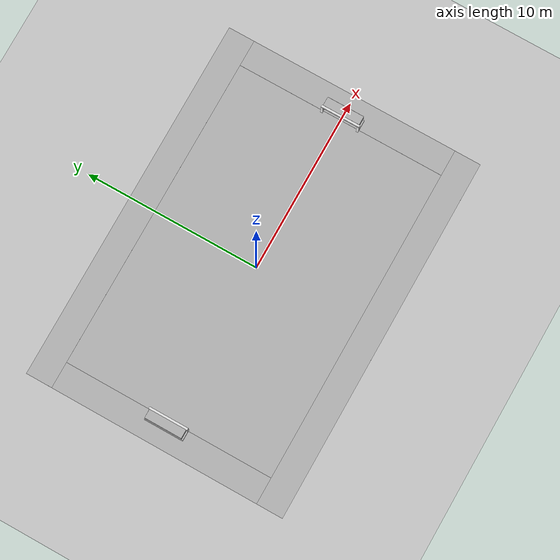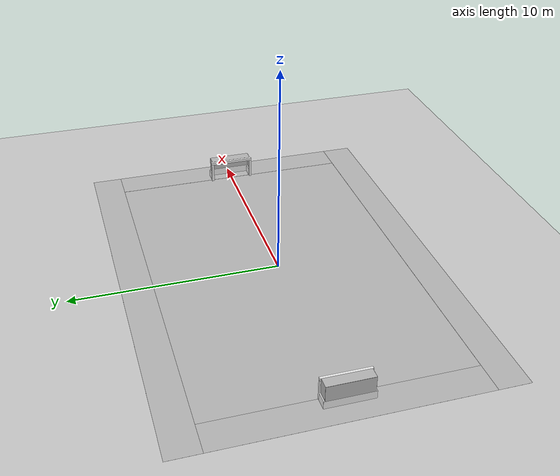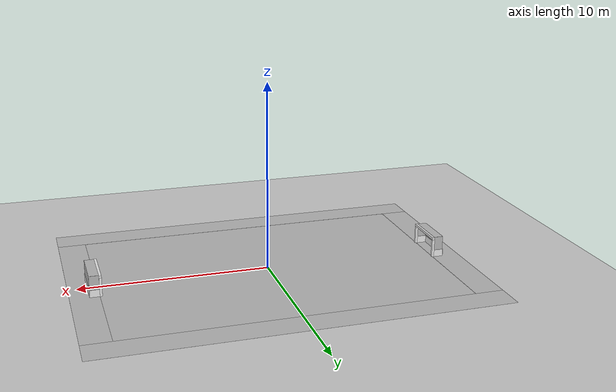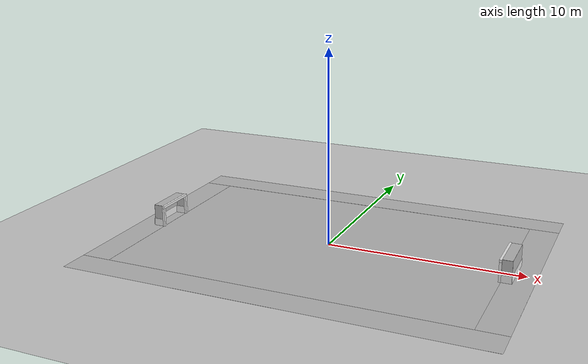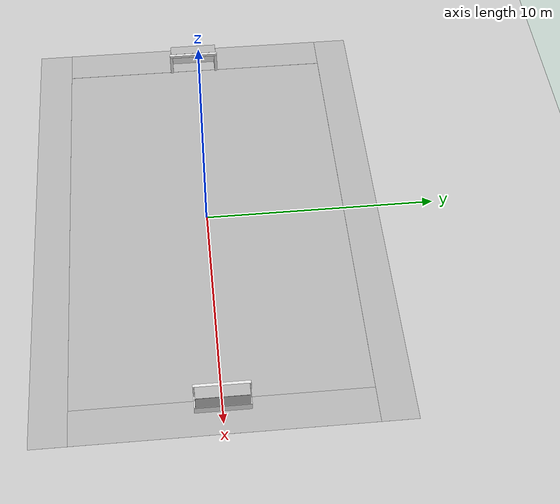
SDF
<sdf version="1.7">
 <world name="default">
  <light name="sun" type="directional">
   <pose>0 0 10 0 -0 0</pose>
   <diffuse>0.8 0.8 0.8 1</diffuse>
   <specular>0.2 0.2 0.2 1</specular>
   <attenuation>
    <range>1000</range>
    <constant>0.9</constant>
    <linear>0.01</linear>
    <quadratic>0.001</quadratic>
   </attenuation>
   <direction>-0.5 0.1 -0.9</direction>
   <spot><inner_angle>0</inner_angle><outer_angle>0</outer_angle><falloff>0</falloff></spot>
  </light>
  <model name="ground_plane">
   <static>1</static>
   <link name="link">
    <collision name="collision">
     <geometry><plane><normal>0 0 1</normal><size>100 100</size></plane></geometry>
     <surface>
      <contact><collide_bitmask>65535</collide_bitmask></contact>
      <friction><ode><mu>100</mu><mu2>50</mu2></ode></friction>
     </surface>
    </collision>
    <visual name="visual">
     <cast_shadows>0</cast_shadows>
     <geometry><plane><normal>0 0 1</normal><size>100 100</size></plane></geometry>
     <material>
      <script><uri>file://media/materials/scripts/gazebo.material</uri><name>Gazebo/Grey</name></script>
     </material>
    </visual>
   </link>
  </model>
  <gravity>0 0 -9.8</gravity>
  <magnetic_field>6e-06 2.3e-05 -4.2e-05</magnetic_field>
  <atmosphere type="adiabatic"/>
  <physics type="ode">
   <max_step_size>0.001</max_step_size>
   <real_time_factor>1</real_time_factor>
   <real_time_update_rate>1000</real_time_update_rate>
  </physics>
  <scene><ambient>0.4 0.4 0.4 1</ambient><background>0.7 0.7 0.7 1</background><shadows>1</shadows></scene>
  <audio><device>default</device></audio>
  <spherical_coordinates>
   <surface_model>EARTH_WGS84</surface_model>
   <latitude_deg>0</latitude_deg>
   <longitude_deg>0</longitude_deg>
   <elevation>0</elevation>
   <heading_deg>0</heading_deg>
  </spherical_coordinates>
  <model name="RoboCup15_MSL_Field">
   <static>1</static>
   <link name="field">
    <pose>0 0 0.01 0 -0 0</pose>
    <collision name="collision">
     <geometry><plane><normal>0 0 1</normal><size>18 12</size></plane></geometry>
     <surface><friction><ode><mu>100</mu><mu2>50</mu2></ode></friction></surface>
    </collision>
    <visual name="carpet">
     <cast_shadows>0</cast_shadows>
     <geometry><plane><normal>0 0 1</normal><size>18 12</size></plane></geometry>
     <material>
      <script>
       <uri>model://RoboCup15_MSL_Field/materials/scripts/</uri>
       <uri>model://RoboCup15_MSL_Field/materials/textures/</uri>
       <name>RoboCup/Carpet</name>
      </script>
     </material>
    </visual>
    <visual name="base1">
     <pose>0 6.75 0.01 0 -0 0</pose>
     <cast_shadows>0</cast_shadows>
     <geometry><plane><normal>0 0 1</normal><size>21 1.5</size></plane></geometry>
     <material>
      <script>
       <uri>model://RoboCup15_MSL_Field/materials/scripts/</uri>
       <uri>model://RoboCup15_MSL_Field/materials/textures/</uri>
       <name>RoboCup/FieldBorder</name>
      </script>
     </material>
    </visual>
    <visual name="base2">
     <pose>0 -6.75 0.01 0 -0 0</pose>
     <cast_shadows>0</cast_shadows>
     <geometry><plane><normal>0 0 1</normal><size>21 1.5</size></plane></geometry>
     <material>
      <script>
       <uri>model://RoboCup15_MSL_Field/materials/scripts/</uri>
       <uri>model://RoboCup15_MSL_Field/materials/textures/</uri>
       <name>RoboCup/FieldBorder</name>
      </script>
     </material>
    </visual>
    <visual name="base3">
     <pose>9.75 0 0.01 0 -0 0</pose>
     <cast_shadows>0</cast_shadows>
     <geometry><plane><normal>0 0 1</normal><size>1.5 12</size></plane></geometry>
     <material>
      <script>
       <uri>model://RoboCup15_MSL_Field/materials/scripts/</uri>
       <uri>model://RoboCup15_MSL_Field/materials/textures/</uri>
       <name>RoboCup/FieldBorder</name>
      </script>
     </material>
    </visual>
    <visual name="base4">
     <pose>-9.75 0 0.01 0 -0 0</pose>
     <cast_shadows>0</cast_shadows>
     <geometry><plane><normal>0 0 1</normal><size>1.5 12</size></plane></geometry>
     <material>
      <script>
       <uri>model://RoboCup15_MSL_Field/materials/scripts/</uri>
       <uri>model://RoboCup15_MSL_Field/materials/textures/</uri>
       <name>RoboCup/FieldBorder</name>
      </script>
     </material>
    </visual>
   </link>
   <pose>-0.037223 0.037281 0 0 -0 0</pose>
  </model>
  <model name="RoboCup15_MSL_Goal">
   <static>1</static>
   <link name="left_post">
    <pose>-0.0625 1.0625 0.5 0 -0 0</pose>
    <collision name="collision"><geometry><box><size>0.125 0.125 1</size></box></geometry></collision>
    <visual name="visual">
     <geometry><box><size>0.125 0.125 1</size></box></geometry>
     <material>
      <script><uri>file://media/materials/scripts/gazebo.material</uri><name>Gazebo/White</name></script>
     </material>
    </visual>
   </link>
   <link name="right_post">
    <pose>-0.0625 -1.0625 0.5 0 -0 0</pose>
    <collision name="collision"><geometry><box><size>0.125 0.125 1</size></box></geometry></collision>
    <visual name="visual">
     <geometry><box><size>0.125 0.125 1</size></box></geometry>
     <material>
      <script><uri>file://media/materials/scripts/gazebo.material</uri><name>Gazebo/White</name></script>
     </material>
    </visual>
   </link>
   <link name="crossbar">
    <pose>-0.0625 0 1.0625 0 -0 0</pose>
    <collision name="collision"><geometry><box><size>0.125 2.25 0.125</size></box></geometry></collision>
    <visual name="visual">
     <geometry><box><size>0.125 2.25 0.125</size></box></geometry>
     <material>
      <script><uri>file://media/materials/scripts/gazebo.material</uri><name>Gazebo/White</name></script>
     </material>
    </visual>
   </link>
   <link name="left_support_horiz_lower">
    <pose>0.25 1.0625 0.2 0 -0 0</pose>
    <collision name="collision"><geometry><box><size>0.5 0.125 0.4</size></box></geometry></collision>
    <visual name="visual">
     <geometry><box><size>0.5 0.125 0.4</size></box></geometry>
     <material>
      <script><uri>file://media/materials/scripts/gazebo.material</uri><name>Gazebo/White</name></script>
     </material>
    </visual>
   </link>
   <link name="right_support_horiz_lower">
    <pose>0.25 -1.0625 0.2 0 -0 0</pose>
    <collision name="collision"><geometry><box><size>0.5 0.125 0.4</size></box></geometry></collision>
    <visual name="visual">
     <geometry><box><size>0.5 0.125 0.4</size></box></geometry>
     <material>
      <script><uri>file://media/materials/scripts/gazebo.material</uri><name>Gazebo/White</name></script>
     </material>
    </visual>
   </link>
   <link name="center_support_horiz_lower">
    <pose>0.51 0 0.2 0 -0 0</pose>
    <collision name="collision"><geometry><box><size>0.02 2.25 0.4</size></box></geometry></collision>
    <visual name="visual">
     <geometry><box><size>0.02 2.25 0.4</size></box></geometry>
     <material>
      <script><uri>file://media/materials/scripts/gazebo.material</uri><name>Gazebo/White</name></script>
     </material>
    </visual>
   </link>
   <link name="center_net">
    <pose>0.5 0 0.7625 0 -0 0</pose>
    <collision name="collision"><geometry><box><size>0.01 2.125 0.725</size></box></geometry></collision>
    <visual name="visual">
     <geometry><box><size>0.01 2.125 0.725</size></box></geometry>
     <material>
      <script>
       <uri>model://RoboCup15_MSL_Goal/materials/scripts/</uri>
       <uri>model://RoboCup15_MSL_Goal/materials/textures/</uri>
       <name>RoboCup/Net</name>
      </script>
     </material>
    </visual>
   </link>
   <link name="left_net">
    <pose>0.25 1.0625 0.7625 0 -0 0</pose>
    <collision name="collision"><geometry><box><size>0.5 0.01 0.725</size></box></geometry></collision>
    <visual name="visual">
     <geometry><box><size>0.5 0.01 0.725</size></box></geometry>
     <material>
      <script>
       <uri>model://RoboCup15_MSL_Goal/materials/scripts/</uri>
       <uri>model://RoboCup15_MSL_Goal/materials/textures/</uri>
       <name>RoboCup/Net</name>
      </script>
     </material>
    </visual>
   </link>
   <link name="right_net">
    <pose>0.25 -1.0625 0.7625 0 -0 0</pose>
    <collision name="collision"><geometry><box><size>0.5 0.01 0.725</size></box></geometry></collision>
    <visual name="visual">
     <geometry><box><size>0.5 0.01 0.725</size></box></geometry>
     <material>
      <script>
       <uri>model://RoboCup15_MSL_Goal/materials/scripts/</uri>
       <uri>model://RoboCup15_MSL_Goal/materials/textures/</uri>
       <name>RoboCup/Net</name>
      </script>
     </material>
    </visual>
   </link>
   <link name="upper_net">
    <pose>0.25 0 1.125 0 -0 0</pose>
    <collision name="collision"><geometry><box><size>0.5 2.125 0.01</size></box></geometry></collision>
    <visual name="visual">
     <geometry><box><size>0.5 2.125 0.01</size></box></geometry>
     <material>
      <script>
       <uri>model://RoboCup15_MSL_Goal/materials/scripts/</uri>
       <uri>model://RoboCup15_MSL_Goal/materials/textures/</uri>
       <name>RoboCup/Net</name>
      </script>
     </material>
    </visual>
   </link>
   <pose>8.96255 0.031463 0 0 -0 0</pose>
  </model>
  <model name="RoboCup15_MSL_Goal_0">
   <static>1</static>
   <link name="left_post">
    <pose>-0.0625 1.0625 0.5 0 -0 0</pose>
    <collision name="collision"><geometry><box><size>0.125 0.125 1</size></box></geometry></collision>
    <visual name="visual">
     <geometry><box><size>0.125 0.125 1</size></box></geometry>
     <material>
      <script><uri>file://media/materials/scripts/gazebo.material</uri><name>Gazebo/White</name></script>
     </material>
    </visual>
   </link>
   <link name="right_post">
    <pose>-0.0625 -1.0625 0.5 0 -0 0</pose>
    <collision name="collision"><geometry><box><size>0.125 0.125 1</size></box></geometry></collision>
    <visual name="visual">
     <geometry><box><size>0.125 0.125 1</size></box></geometry>
     <material>
      <script><uri>file://media/materials/scripts/gazebo.material</uri><name>Gazebo/White</name></script>
     </material>
    </visual>
   </link>
   <link name="crossbar">
    <pose>-0.0625 0 1.0625 0 -0 0</pose>
    <collision name="collision"><geometry><box><size>0.125 2.25 0.125</size></box></geometry></collision>
    <visual name="visual">
     <geometry><box><size>0.125 2.25 0.125</size></box></geometry>
     <material>
      <script><uri>file://media/materials/scripts/gazebo.material</uri><name>Gazebo/White</name></script>
     </material>
    </visual>
   </link>
   <link name="left_support_horiz_lower">
    <pose>0.25 1.0625 0.2 0 -0 0</pose>
    <collision name="collision"><geometry><box><size>0.5 0.125 0.4</size></box></geometry></collision>
    <visual name="visual">
     <geometry><box><size>0.5 0.125 0.4</size></box></geometry>
     <material>
      <script><uri>file://media/materials/scripts/gazebo.material</uri><name>Gazebo/White</name></script>
     </material>
    </visual>
   </link>
   <link name="right_support_horiz_lower">
    <pose>0.25 -1.0625 0.2 0 -0 0</pose>
    <collision name="collision"><geometry><box><size>0.5 0.125 0.4</size></box></geometry></collision>
    <visual name="visual">
     <geometry><box><size>0.5 0.125 0.4</size></box></geometry>
     <material>
      <script><uri>file://media/materials/scripts/gazebo.material</uri><name>Gazebo/White</name></script>
     </material>
    </visual>
   </link>
   <link name="center_support_horiz_lower">
    <pose>0.51 0 0.2 0 -0 0</pose>
    <collision name="collision"><geometry><box><size>0.02 2.25 0.4</size></box></geometry></collision>
    <visual name="visual">
     <geometry><box><size>0.02 2.25 0.4</size></box></geometry>
     <material>
      <script><uri>file://media/materials/scripts/gazebo.material</uri><name>Gazebo/White</name></script>
     </material>
    </visual>
   </link>
   <link name="center_net">
    <pose>0.5 0 0.7625 0 -0 0</pose>
    <collision name="collision"><geometry><box><size>0.01 2.125 0.725</size></box></geometry></collision>
    <visual name="visual">
     <geometry><box><size>0.01 2.125 0.725</size></box></geometry>
     <material>
      <script>
       <uri>model://RoboCup15_MSL_Goal/materials/scripts/</uri>
       <uri>model://RoboCup15_MSL_Goal/materials/textures/</uri>
       <name>RoboCup/Net</name>
      </script>
     </material>
    </visual>
   </link>
   <link name="left_net">
    <pose>0.25 1.0625 0.7625 0 -0 0</pose>
    <collision name="collision"><geometry><box><size>0.5 0.01 0.725</size></box></geometry></collision>
    <visual name="visual">
     <geometry><box><size>0.5 0.01 0.725</size></box></geometry>
     <material>
      <script>
       <uri>model://RoboCup15_MSL_Goal/materials/scripts/</uri>
       <uri>model://RoboCup15_MSL_Goal/materials/textures/</uri>
       <name>RoboCup/Net</name>
      </script>
     </material>
    </visual>
   </link>
   <link name="right_net">
    <pose>0.25 -1.0625 0.7625 0 -0 0</pose>
    <collision name="collision"><geometry><box><size>0.5 0.01 0.725</size></box></geometry></collision>
    <visual name="visual">
     <geometry><box><size>0.5 0.01 0.725</size></box></geometry>
     <material>
      <script>
       <uri>model://RoboCup15_MSL_Goal/materials/scripts/</uri>
       <uri>model://RoboCup15_MSL_Goal/materials/textures/</uri>
       <name>RoboCup/Net</name>
      </script>
     </material>
    </visual>
   </link>
   <link name="upper_net">
    <pose>0.25 0 1.125 0 -0 0</pose>
    <collision name="collision"><geometry><box><size>0.5 2.125 0.01</size></box></geometry></collision>
    <visual name="visual">
     <geometry><box><size>0.5 2.125 0.01</size></box></geometry>
     <material>
      <script>
       <uri>model://RoboCup15_MSL_Goal/materials/scripts/</uri>
       <uri>model://RoboCup15_MSL_Goal/materials/textures/</uri>
       <name>RoboCup/Net</name>
      </script>
     </material>
    </visual>
   </link>
   <pose>-9.10468 -0.023816 -0 0 -0 -3.14138</pose>
  </model>
 </world>
</sdf>
